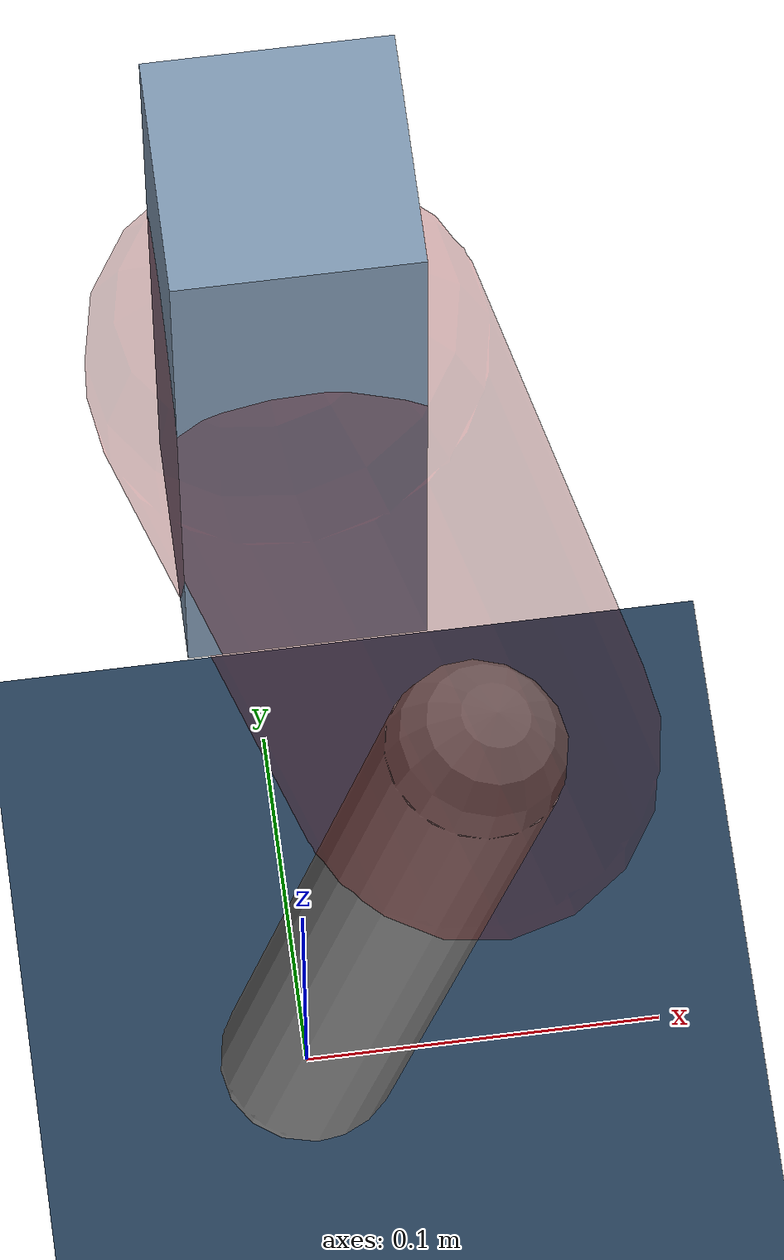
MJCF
<mujoco model="Hopper2D">
	<compiler inertiafromgeom="true" angle="radian" />
	<option timestep="0.001" integrator="implicit" cone="elliptic" solver="Newton" tolerance="1e-10" />

	<default>
		<geom contype="1" conaffinity="1" condim="3" friction="2 0.005 0.0001" solref="0.005 1" />
		<joint limited="true" damping="0.1" />
	</default>

	<asset>
		<texture name="skybox" type="skybox" builtin="gradient" rgb1=".4 .6 .8" rgb2="0 0 0" width="800" height="800" />
		<texture name="grid" type="2d" builtin="checker" rgb1=".1 .2 .3" rgb2=".2 .3 .4" width="300" height="300" mark="edge" markrgb=".2 .3 .4" />
		<material name="ground" texture="grid" texrepeat="1 1" texuniform="true" reflectance="0.1" />
		<material name="leg" rgba="0.5 0.6 0.7 1" />
	</asset>

	<worldbody>

		<geom name="floor" type="plane" size="5 5 0.25" material="ground" />

		<light directional="false" diffuse="0.8 0.8 0.8" specular="0.3 0.3 0.3" pos="0 0 2" dir="0 0 -1" />
		<light mode="targetbodycom" target="base" directional="false" diffuse="0.8 0.8 0.8" specular="0.3 0.3 0.3" pos="0 0 2" dir="0 0 -1" />

		<camera name="fixed" pos="0 -2 1" xyaxes="1 0 0 0 0 1" />
		<camera name="tracking" mode="trackcom" pos="0 -3 1" />

		<body name="root" pos="0 0 0.4402120102388592">
			<joint name="slide_x" type="slide" axis="1 0 0" range="-100 100" />
			<joint name="slide_z" type="slide" axis="0 0 1" range="0 10" />

			<body name="base" pos="0 0 0">
				<geom name="torso" type="box" size="0.03 0.03 0.1" mass="2.503" material="leg" />

				<body name="link1" pos="0 0 0" euler="0 1.3813841418558914 0">
					<joint type="hinge" axis="0 -1 0" pos="0 0 0" name="hinge1" limited="true" range="-3.14 3.14" stiffness="0" damping="0.1" />
					<geom name="thigh" type="capsule" fromto="0 0 0 0.24909534209146783 0 0" size="0.05" rgba="0.5 0 0 0.3" mass="0.8540478894378164" />

					<body name="link2" pos="0.24909534209146783 0 0" euler="0 0.4247776127064059 0">
						<joint type="hinge" axis="0 -1 0" pos="0 0 0" name="hinge2" limited="true" range="-3.14 3.14" stiffness="0" damping="0.1" />
						<geom name="shank" type="capsule" fromto="0 0 0 0.20111666814739138 0 0" size="0.025" mass="0.40180500133265223" />

					</body>
				</body>
			</body>
		</body>
	</worldbody>

	<actuator>
		<motor name="torque1" joint="hinge1" ctrlrange="-97.65376404858206 97.65376404858206" ctrllimited="true" gear="1" />
		<motor name="torque2" joint="hinge2" ctrlrange="-99.77237960989255 99.77237960989255" ctrllimited="true" gear="1" />
	</actuator>
</mujoco>
